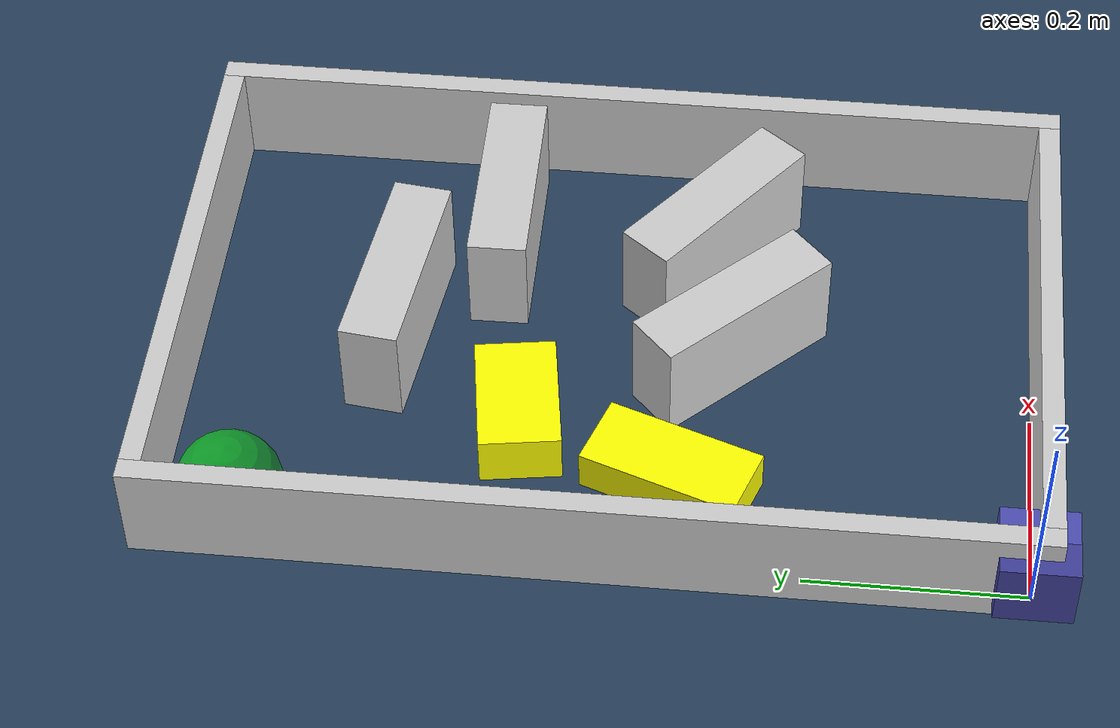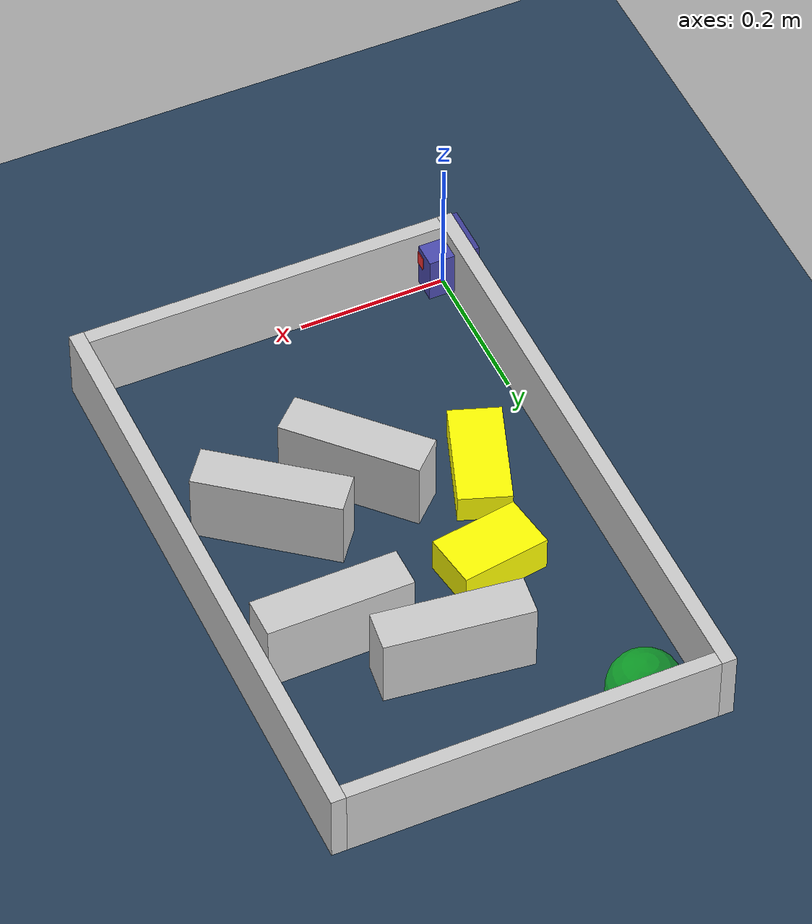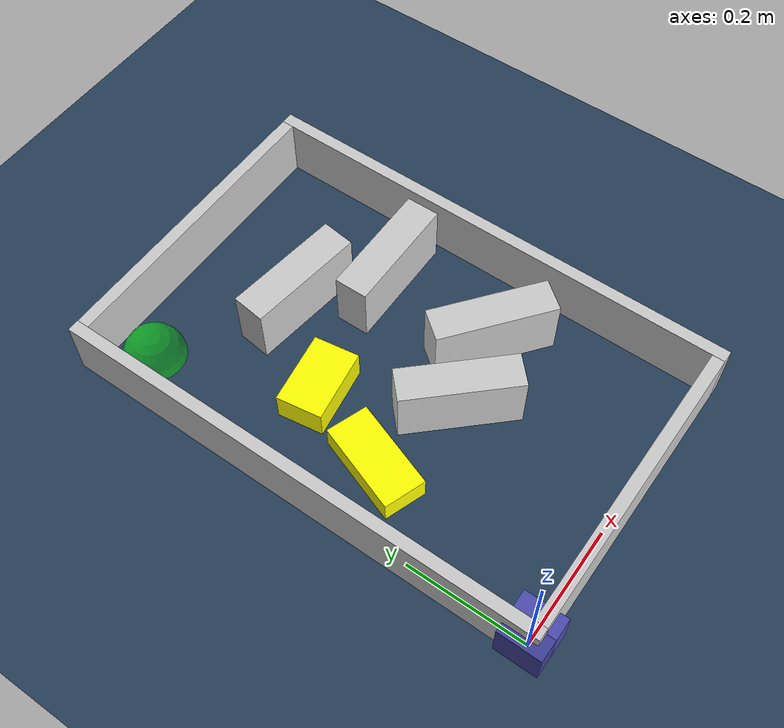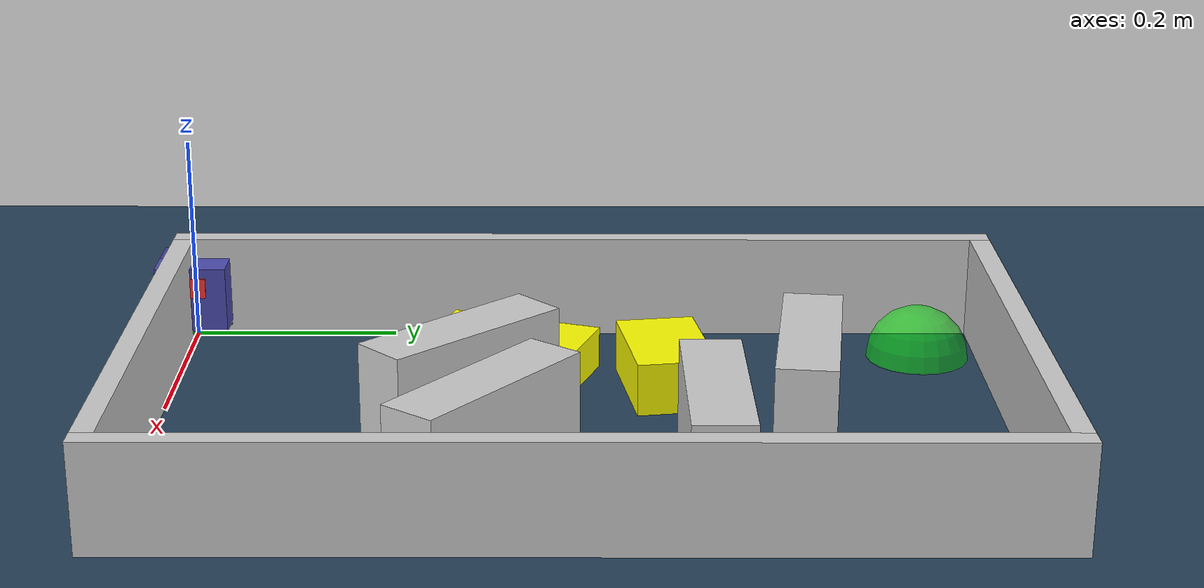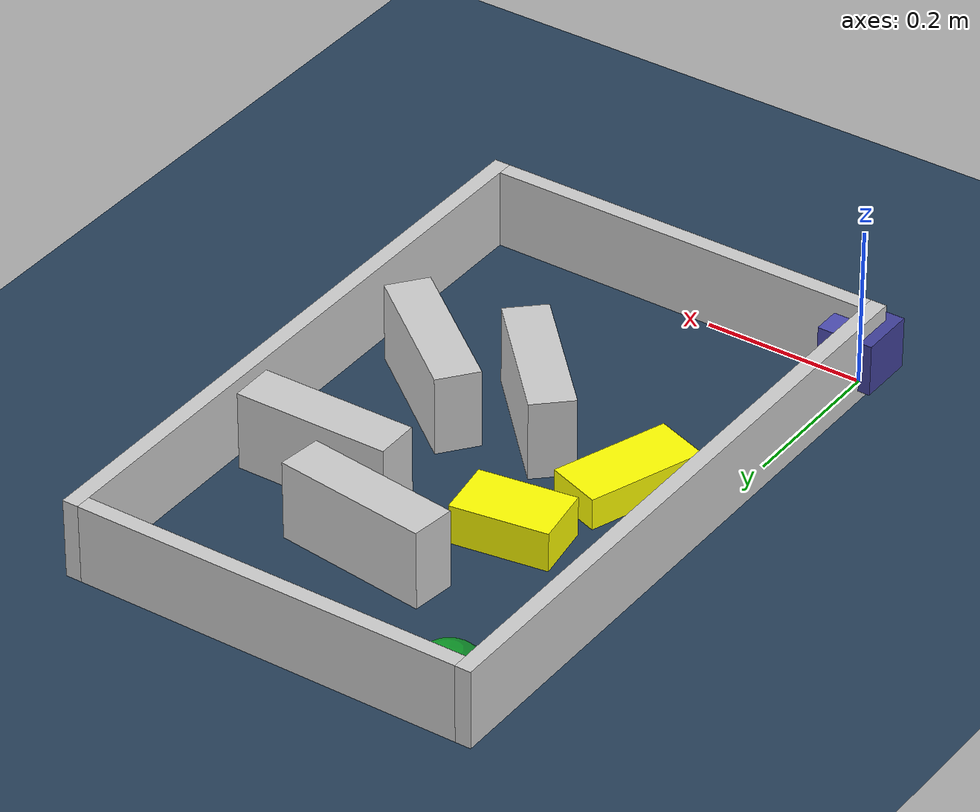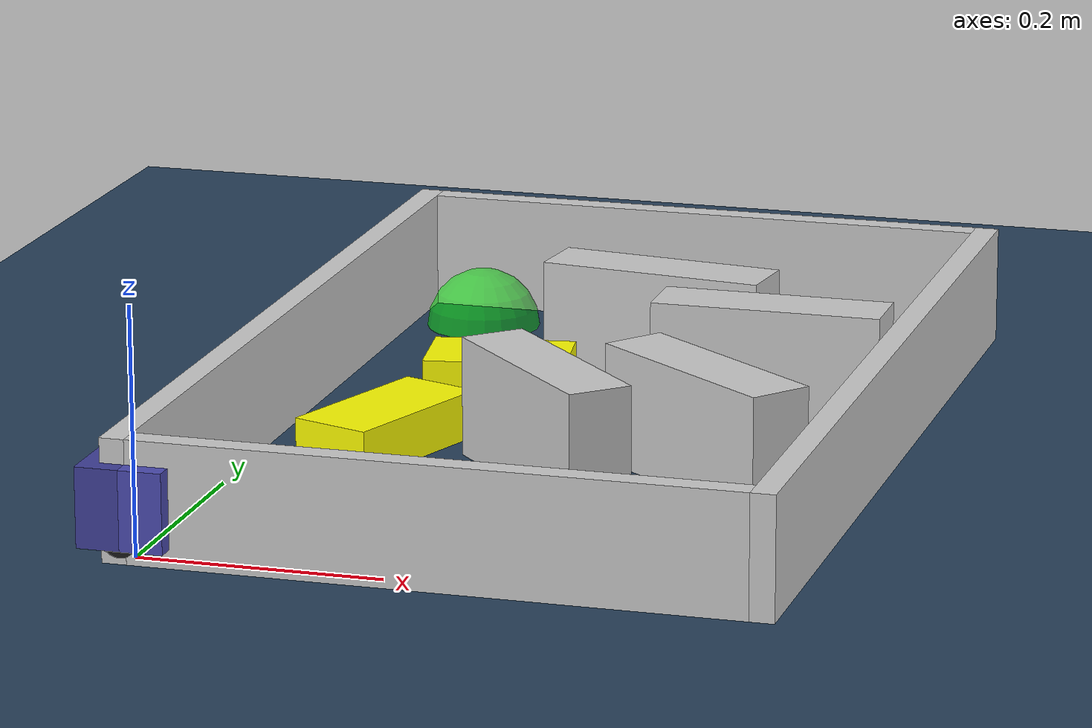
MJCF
<?xml version="1.0" ?>
<mujoco model="generated_environment">
  <option cone="elliptic" integrator="implicitfast" iterations="100" timestep="0.002"/>
  <default>
    <geom density="1"/>
  </default>
  <asset>
    <texture builtin="gradient" height="3072" rgb1="0.3 0.5 0.7" rgb2="0 0 0" type="skybox" width="512"/>
    <texture builtin="checker" height="300" mark="edge" markrgb="0.8 0.8 0.8" name="groundplane" rgb1="0.2 0.3 0.4" rgb2="0.1 0.2 0.3" type="2d" width="300"/>
    <material name="groundplane" reflectance="0.2" texrepeat="5 5" texture="groundplane" texuniform="true"/>
    <material name="robot" rgba="1.0 1.0 0.0 1.0"/>
  </asset>
  <include file="/home/dhruv/projects_dhruv/namo/namo_cpp/test_xml/little-car-modeling-package/assets/mjcf/little_car.xml"/>
  <worldbody>
    <light dir="0 0 -1" directional="true" pos="0 0 1.5"/>
    <geom condim="4" friction="0.5 0.005 0.001" material="groundplane" name="floor" size="0 0 0.05" type="plane"/>
    <body name="walls">
      <geom name="wall_1" condim="4" pos="-0.01 0.3875 0.05" friction="1 0.005 0.0001" rgba="0.800000011920929 0.800000011920929 0.800000011920929 1.0" size="0.01 0.40750000000000003 0.05" type="box"/>
      <geom name="wall_2" condim="4" pos="0.5 0.3875 0.05" friction="1 0.005 0.0001" rgba="0.800000011920929 0.800000011920929 0.800000011920929 1.0" size="0.01 0.40750000000000003 0.05" type="box"/>
      <geom name="wall_3" condim="4" pos="0.245 -0.01 0.05" friction="1 0.005 0.0001" rgba="0.800000011920929 0.800000011920929 0.800000011920929 1.0" size="0.245 0.01 0.05" type="box"/>
      <geom name="wall_4" condim="4" pos="0.245 0.785 0.05" friction="1 0.005 0.0001" rgba="0.800000011920929 0.800000011920929 0.800000011920929 1.0" size="0.245 0.01 0.05" type="box"/>
    </body>
    <body name="obstacle_1_movable">
      <geom name="obstacle_1_movable" condim="4" pos="0.0978329814263473 0.32256034316252097 0.02" quat="-0.9853649886097842 0 0 0.17045773441542636" friction="1 0.005 0.0001" rgba="1 1 0 1" size="0.035 0.075 0.02" type="box" mass="0.1"/>
      <joint type="free"/>
    </body>
    <body name="obstacle_2_movable">
      <geom name="obstacle_2_movable" condim="4" pos="0.15136484753456536 0.4669004805171801 0.025" quat="0.651467658072506 0 0 0.7586764069651332" friction="1 0.005 0.0001" rgba="1 1 0 1" size="0.0375 0.06 0.025" type="box" mass="0.1"/>
      <joint type="free"/>
    </body>
    <body name="wall_5">
      <geom name="wall_5" condim="4" pos="0.25834214199785455 0.5910554844737175 0.05" quat="0.7492922477024015 0 0 0.6622394789901028" friction="1 0.005 0.0001" rgba="0.800000011920929 0.800000011920929 0.800000011920929 1.0" size="0.0275 0.0975 0.05" type="box"/>
    </body>
    <body name="wall_6">
      <geom name="wall_6" condim="4" pos="0.37228985932221953 0.30415864220955857 0.05" quat="-0.437548711895111 0 0 0.8991947090140873" friction="1 0.005 0.0001" rgba="0.800000011920929 0.800000011920929 0.800000011920929 1.0" size="0.0275 0.0975 0.05" type="box"/>
    </body>
    <body name="wall_7">
      <geom name="wall_7" condim="4" pos="0.3779903832406008 0.5013203618183496 0.05" quat="0.704443971016122 0 0 0.7097596013433259" friction="1 0.005 0.0001" rgba="0.800000011920929 0.800000011920929 0.800000011920929 1.0" size="0.0275 0.0975 0.05" type="box"/>
    </body>
    <body name="wall_8">
      <geom name="wall_8" condim="4" pos="0.24625554992652135 0.27882401778698584 0.05" quat="0.3958384006805342 0 0 0.9183201841115531" friction="1 0.005 0.0001" rgba="0.800000011920929 0.800000011920929 0.800000011920929 1.0" size="0.095 0.0275 0.05" type="box"/>
    </body>
    <site name="goal" type="sphere" size="0.05 0.05 0.05" rgba="0 1 0 0.5" pos="0.060502 0.718623 0.0"/>
  </worldbody>
</mujoco>

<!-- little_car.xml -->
<mujoco model="little_car">
  <compiler angle="radian" autolimits="true"/>
  <default>
    <geom condim="4"/>
    <joint damping="0.01" armature="0.0001"/>
  </default>
  <worldbody>
    <body name="car" pos="0 0 0.010000">
      <freejoint name="car_freejoint"/>
      <inertial pos="0.000000 0 0.037500" mass="0.350000"
                diaginertia="0.000266 0.000266 0.000286"/>
      <geom name="front_chassis_collision" type="box" pos="0.017500 0 0.037500"
            size="0.017500 0.035000 0.032500"
            rgba="0.3 0.3 0.7 1"/>
      <geom name="rear_chassis_collision" type="box" pos="-0.017500 0 0.037500"
            size="0.017500 0.035000 0.032500"
            rgba="0.25 0.25 0.6 1"/>
      <geom name="front_marker" type="box" pos="0.034000 0 0.050500"
            size="0.002000 0.015000 0.010000"
            rgba="1.0 0.2 0.2 1" contype="0" conaffinity="0"/>

      <body name="rear_support_body" pos="-0.030000 0.000000 0.002500">
        <joint name="rear_caster_joint" type="ball" damping="0.0001"/>
        <inertial pos="0 0 0" mass="0.025000"
                  diaginertia="0.000001 0.000001 0.000001"/>
        <geom name="rear_support" type="sphere"
              pos="0 0 0"
              size="0.002500"
              friction="0.000000 0.000000 0.000000"
              rgba="0.7 0.1 0.1 1"/>
      </body>

      <body name="front_support_body" pos="0.030000 0.000000 0.002500">
        <joint name="front_caster_joint" type="ball" damping="0.0001"/>
        <inertial pos="0 0 0" mass="0.025000"
                  diaginertia="0.000001 0.000001 0.000001"/>
        <geom name="front_support" type="sphere"
              pos="0 0 0"
              size="0.002500"
              friction="0.000000 0.000000 0.000000"
              rgba="0.1 0.7 0.1 1"/>
      </body>

      <body name="left_wheel" pos="0.000000 0.034000 0.015000">
        <inertial pos="0 0 0" mass="0.050000"
                  diaginertia="0.000003 0.000006 0.000003"/>
        <joint name="left_wheel_joint" type="hinge" axis="0 1 0"/>
        <geom name="left_wheel_collision" type="cylinder" size="0.015000 0.000500"
              euler="1.57079632679 0 0" rgba="0.1 0.1 0.1 1"/>
      </body>

      <body name="right_wheel" pos="0.000000 -0.034000 0.015000">
        <inertial pos="0 0 0" mass="0.050000"
                  diaginertia="0.000003 0.000006 0.000003"/>
        <joint name="right_wheel_joint" type="hinge" axis="0 1 0"/>
        <geom name="right_wheel_collision" type="cylinder" size="0.015000 0.000500"
              euler="1.57079632679 0 0" rgba="0.1 0.1 0.1 1"/>
      </body>
    </body>
  </worldbody>
  <contact>
    <exclude body1="car" body2="left_wheel"/>
    <exclude body1="car" body2="right_wheel"/>
  </contact>
  <actuator>
    <velocity name="left_wheel_drive" joint="left_wheel_joint"
              ctrlrange="-25.000000 25.000000"
              kv="0.750000" forcerange="-0.500000 0.500000"/>
    <velocity name="right_wheel_drive" joint="right_wheel_joint"
              ctrlrange="-25.000000 25.000000"
              kv="0.750000" forcerange="-0.500000 0.500000"/>
  </actuator>
</mujoco>
